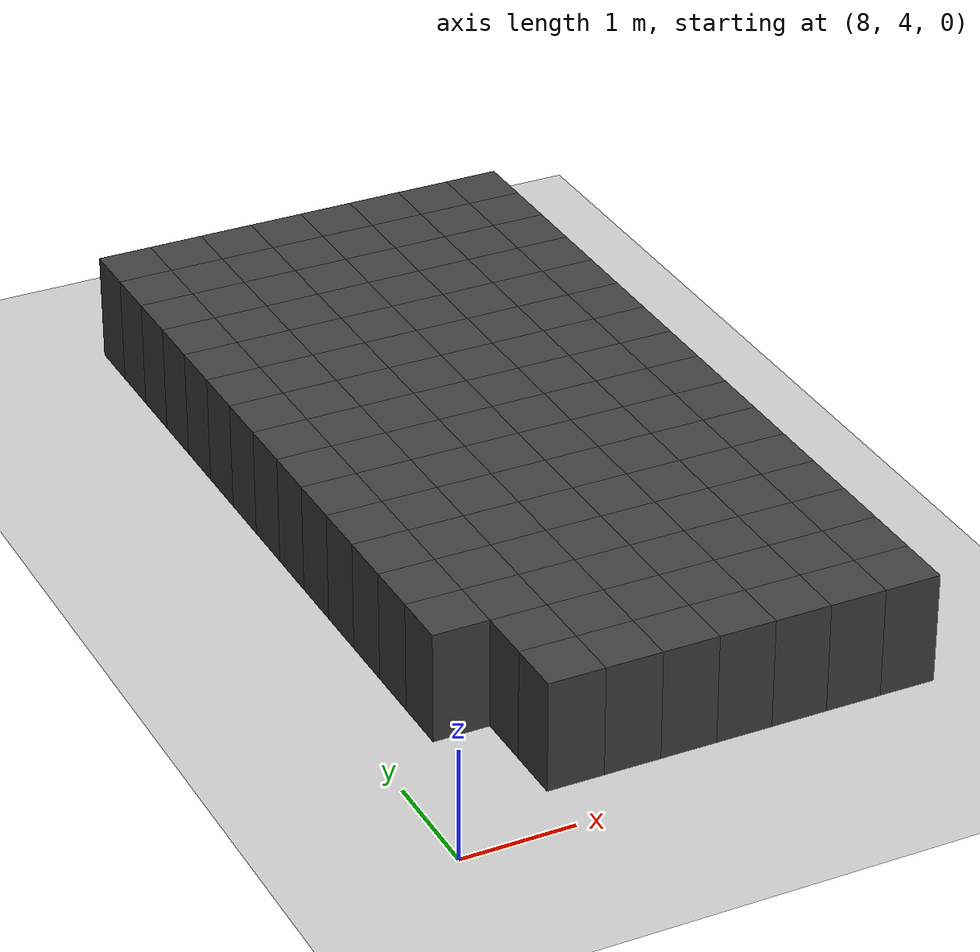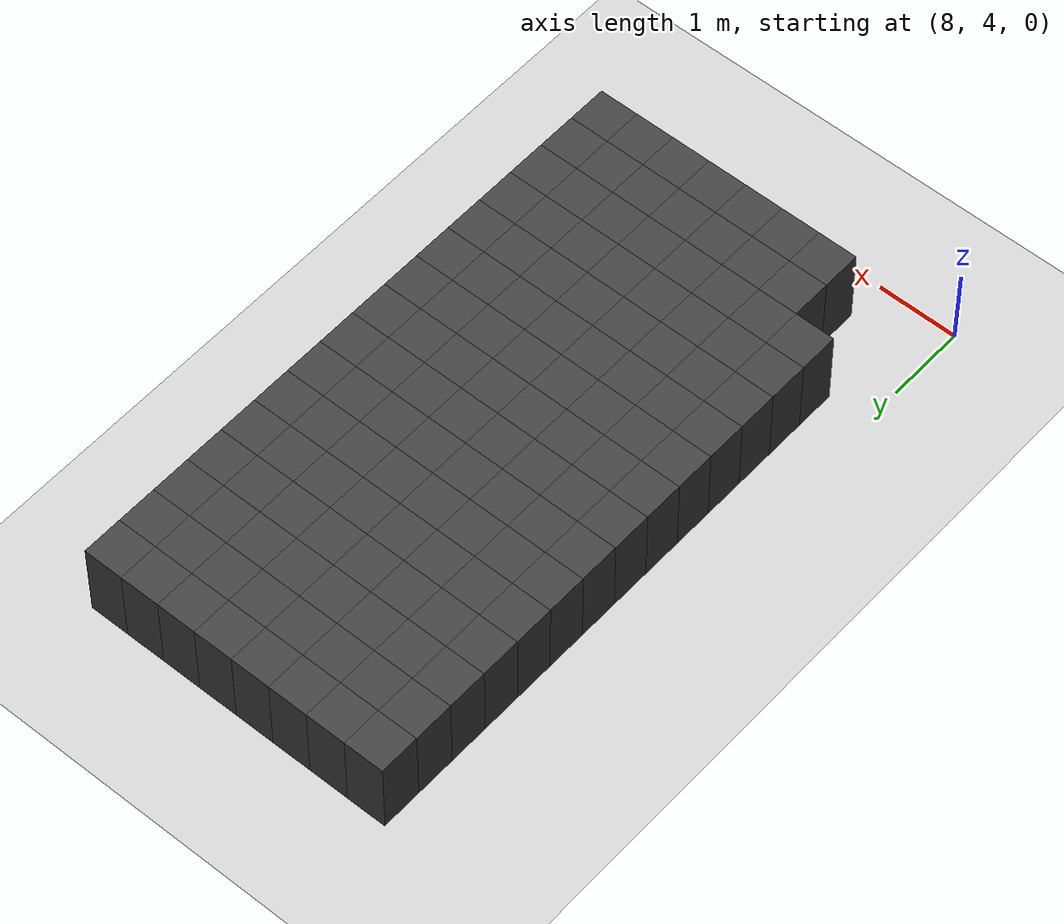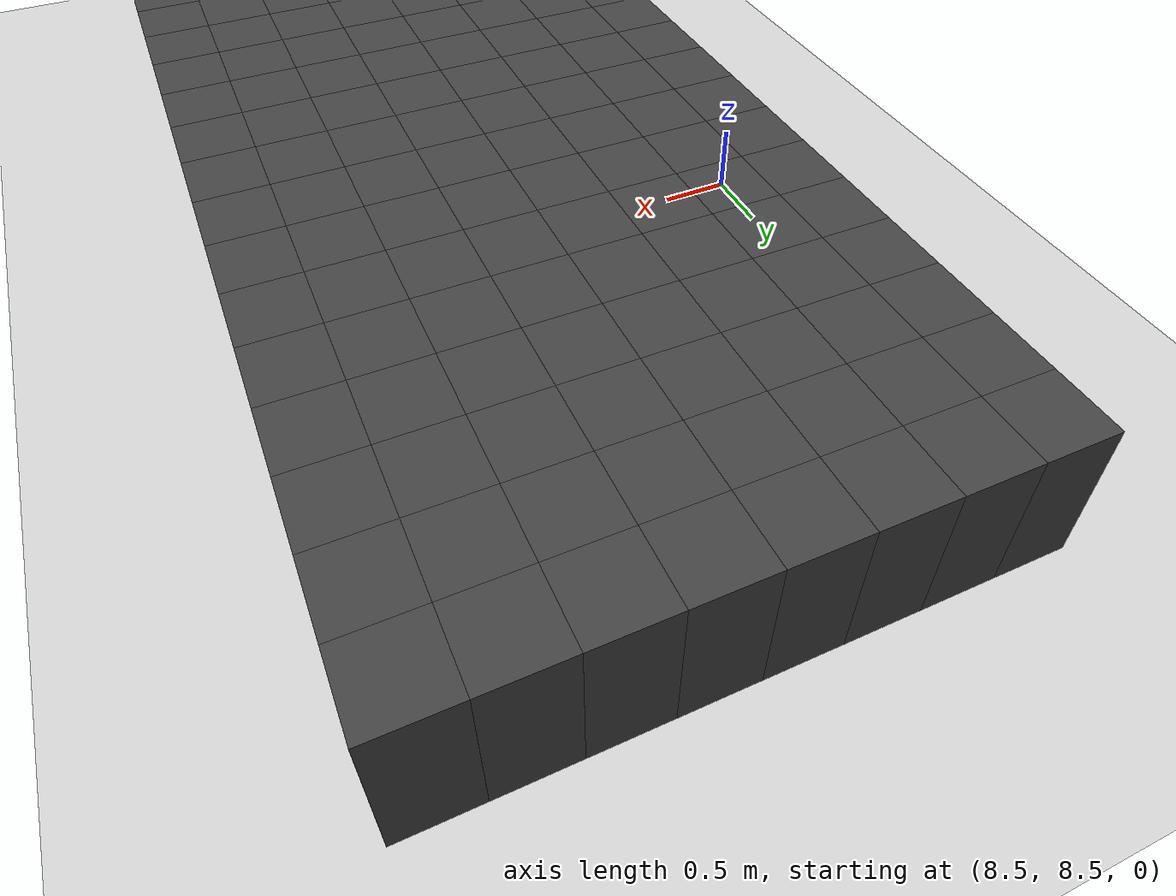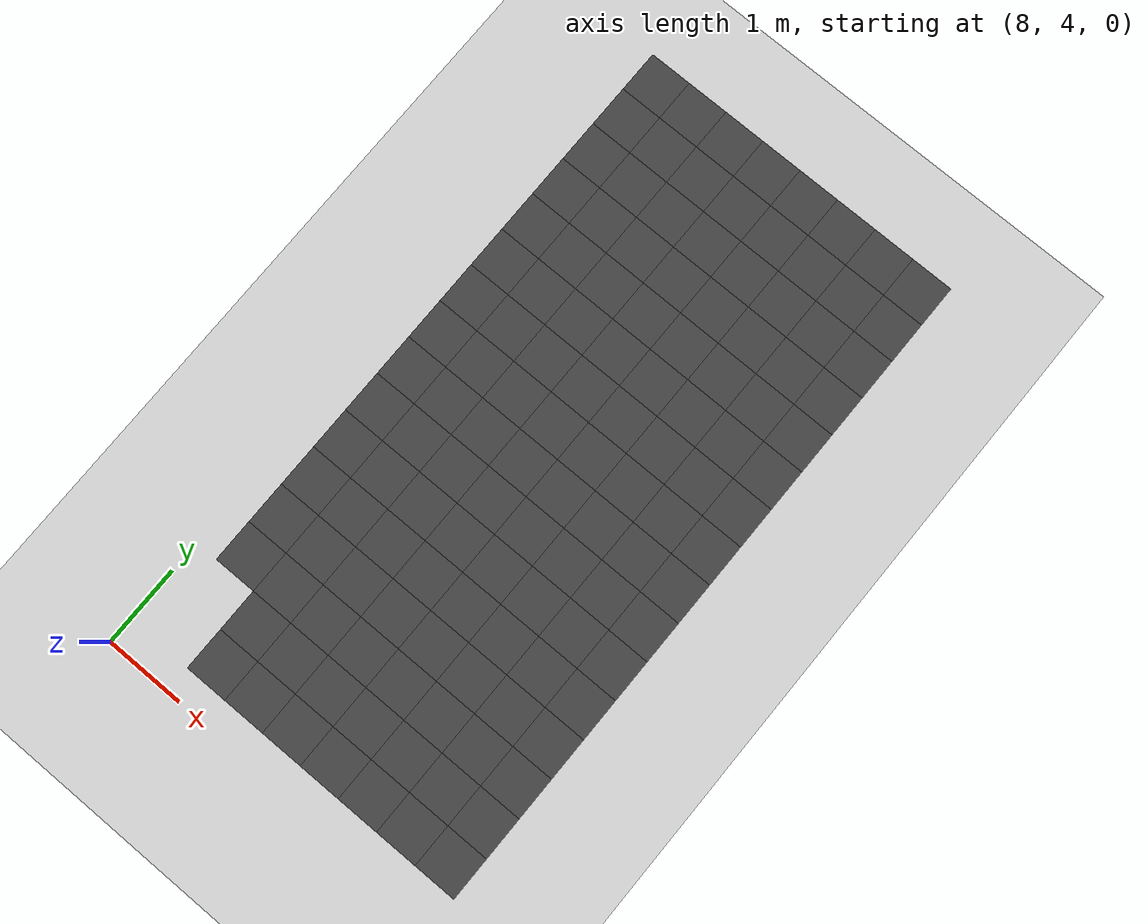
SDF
<sdf version="1.7">
 <world name="map_10764">
  <model name="ground_plane">
   <static>true</static>
   <link name="link">
    <collision name="collision">
     <geometry><plane><normal>0 0 1</normal><size>200 200</size></plane></geometry>
    </collision>
    <visual name="visual">
     <geometry><plane><normal>0 0 1</normal><size>200 200</size></plane></geometry>
     <material><ambient>0.8 0.8 0.8 1</ambient><diffuse>0.8 0.8 0.8 1</diffuse></material>
    </visual>
   </link>
  </model>
  <model name="maze_environment">
   <static>true</static>
   <link name="wall_42">
    <pose>8.750 12.250 0.500 0 0 0</pose>
    <collision name="col"><geometry><box><size>0.5 0.5 1.0</size></box></geometry></collision>
    <visual name="vis">
     <geometry><box><size>0.5 0.5 1.0</size></box></geometry>
     <material><ambient>0.15 0.15 0.15 1</ambient><diffuse>0.25 0.25 0.25 1</diffuse></material>
    </visual>
   </link>
   <link name="wall_43">
    <pose>9.250 12.250 0.500 0 0 0</pose>
    <collision name="col"><geometry><box><size>0.5 0.5 1.0</size></box></geometry></collision>
    <visual name="vis">
     <geometry><box><size>0.5 0.5 1.0</size></box></geometry>
     <material><ambient>0.15 0.15 0.15 1</ambient><diffuse>0.25 0.25 0.25 1</diffuse></material>
    </visual>
   </link>
   <link name="wall_44">
    <pose>9.750 12.250 0.500 0 0 0</pose>
    <collision name="col"><geometry><box><size>0.5 0.5 1.0</size></box></geometry></collision>
    <visual name="vis">
     <geometry><box><size>0.5 0.5 1.0</size></box></geometry>
     <material><ambient>0.15 0.15 0.15 1</ambient><diffuse>0.25 0.25 0.25 1</diffuse></material>
    </visual>
   </link>
   <link name="wall_45">
    <pose>10.250 12.250 0.500 0 0 0</pose>
    <collision name="col"><geometry><box><size>0.5 0.5 1.0</size></box></geometry></collision>
    <visual name="vis">
     <geometry><box><size>0.5 0.5 1.0</size></box></geometry>
     <material><ambient>0.15 0.15 0.15 1</ambient><diffuse>0.25 0.25 0.25 1</diffuse></material>
    </visual>
   </link>
   <link name="wall_46">
    <pose>10.750 12.250 0.500 0 0 0</pose>
    <collision name="col"><geometry><box><size>0.5 0.5 1.0</size></box></geometry></collision>
    <visual name="vis">
     <geometry><box><size>0.5 0.5 1.0</size></box></geometry>
     <material><ambient>0.15 0.15 0.15 1</ambient><diffuse>0.25 0.25 0.25 1</diffuse></material>
    </visual>
   </link>
   <link name="wall_47">
    <pose>11.250 12.250 0.500 0 0 0</pose>
    <collision name="col"><geometry><box><size>0.5 0.5 1.0</size></box></geometry></collision>
    <visual name="vis">
     <geometry><box><size>0.5 0.5 1.0</size></box></geometry>
     <material><ambient>0.15 0.15 0.15 1</ambient><diffuse>0.25 0.25 0.25 1</diffuse></material>
    </visual>
   </link>
   <link name="wall_48">
    <pose>11.750 12.250 0.500 0 0 0</pose>
    <collision name="col"><geometry><box><size>0.5 0.5 1.0</size></box></geometry></collision>
    <visual name="vis">
     <geometry><box><size>0.5 0.5 1.0</size></box></geometry>
     <material><ambient>0.15 0.15 0.15 1</ambient><diffuse>0.25 0.25 0.25 1</diffuse></material>
    </visual>
   </link>
   <link name="wall_49">
    <pose>12.250 12.250 0.500 0 0 0</pose>
    <collision name="col"><geometry><box><size>0.5 0.5 1.0</size></box></geometry></collision>
    <visual name="vis">
     <geometry><box><size>0.5 0.5 1.0</size></box></geometry>
     <material><ambient>0.15 0.15 0.15 1</ambient><diffuse>0.25 0.25 0.25 1</diffuse></material>
    </visual>
   </link>
   <link name="wall_82">
    <pose>8.750 11.750 0.500 0 0 0</pose>
    <collision name="col"><geometry><box><size>0.5 0.5 1.0</size></box></geometry></collision>
    <visual name="vis">
     <geometry><box><size>0.5 0.5 1.0</size></box></geometry>
     <material><ambient>0.15 0.15 0.15 1</ambient><diffuse>0.25 0.25 0.25 1</diffuse></material>
    </visual>
   </link>
   <link name="wall_83">
    <pose>9.250 11.750 0.500 0 0 0</pose>
    <collision name="col"><geometry><box><size>0.5 0.5 1.0</size></box></geometry></collision>
    <visual name="vis">
     <geometry><box><size>0.5 0.5 1.0</size></box></geometry>
     <material><ambient>0.15 0.15 0.15 1</ambient><diffuse>0.25 0.25 0.25 1</diffuse></material>
    </visual>
   </link>
   <link name="wall_84">
    <pose>9.750 11.750 0.500 0 0 0</pose>
    <collision name="col"><geometry><box><size>0.5 0.5 1.0</size></box></geometry></collision>
    <visual name="vis">
     <geometry><box><size>0.5 0.5 1.0</size></box></geometry>
     <material><ambient>0.15 0.15 0.15 1</ambient><diffuse>0.25 0.25 0.25 1</diffuse></material>
    </visual>
   </link>
   <link name="wall_85">
    <pose>10.250 11.750 0.500 0 0 0</pose>
    <collision name="col"><geometry><box><size>0.5 0.5 1.0</size></box></geometry></collision>
    <visual name="vis">
     <geometry><box><size>0.5 0.5 1.0</size></box></geometry>
     <material><ambient>0.15 0.15 0.15 1</ambient><diffuse>0.25 0.25 0.25 1</diffuse></material>
    </visual>
   </link>
   <link name="wall_86">
    <pose>10.750 11.750 0.500 0 0 0</pose>
    <collision name="col"><geometry><box><size>0.5 0.5 1.0</size></box></geometry></collision>
    <visual name="vis">
     <geometry><box><size>0.5 0.5 1.0</size></box></geometry>
     <material><ambient>0.15 0.15 0.15 1</ambient><diffuse>0.25 0.25 0.25 1</diffuse></material>
    </visual>
   </link>
   <link name="wall_87">
    <pose>11.250 11.750 0.500 0 0 0</pose>
    <collision name="col"><geometry><box><size>0.5 0.5 1.0</size></box></geometry></collision>
    <visual name="vis">
     <geometry><box><size>0.5 0.5 1.0</size></box></geometry>
     <material><ambient>0.15 0.15 0.15 1</ambient><diffuse>0.25 0.25 0.25 1</diffuse></material>
    </visual>
   </link>
   <link name="wall_88">
    <pose>11.750 11.750 0.500 0 0 0</pose>
    <collision name="col"><geometry><box><size>0.5 0.5 1.0</size></box></geometry></collision>
    <visual name="vis">
     <geometry><box><size>0.5 0.5 1.0</size></box></geometry>
     <material><ambient>0.15 0.15 0.15 1</ambient><diffuse>0.25 0.25 0.25 1</diffuse></material>
    </visual>
   </link>
   <link name="wall_89">
    <pose>12.250 11.750 0.500 0 0 0</pose>
    <collision name="col"><geometry><box><size>0.5 0.5 1.0</size></box></geometry></collision>
    <visual name="vis">
     <geometry><box><size>0.5 0.5 1.0</size></box></geometry>
     <material><ambient>0.15 0.15 0.15 1</ambient><diffuse>0.25 0.25 0.25 1</diffuse></material>
    </visual>
   </link>
   <link name="wall_122">
    <pose>8.750 11.250 0.500 0 0 0</pose>
    <collision name="col"><geometry><box><size>0.5 0.5 1.0</size></box></geometry></collision>
    <visual name="vis">
     <geometry><box><size>0.5 0.5 1.0</size></box></geometry>
     <material><ambient>0.15 0.15 0.15 1</ambient><diffuse>0.25 0.25 0.25 1</diffuse></material>
    </visual>
   </link>
   <link name="wall_123">
    <pose>9.250 11.250 0.500 0 0 0</pose>
    <collision name="col"><geometry><box><size>0.5 0.5 1.0</size></box></geometry></collision>
    <visual name="vis">
     <geometry><box><size>0.5 0.5 1.0</size></box></geometry>
     <material><ambient>0.15 0.15 0.15 1</ambient><diffuse>0.25 0.25 0.25 1</diffuse></material>
    </visual>
   </link>
   <link name="wall_124">
    <pose>9.750 11.250 0.500 0 0 0</pose>
    <collision name="col"><geometry><box><size>0.5 0.5 1.0</size></box></geometry></collision>
    <visual name="vis">
     <geometry><box><size>0.5 0.5 1.0</size></box></geometry>
     <material><ambient>0.15 0.15 0.15 1</ambient><diffuse>0.25 0.25 0.25 1</diffuse></material>
    </visual>
   </link>
   <link name="wall_125">
    <pose>10.250 11.250 0.500 0 0 0</pose>
    <collision name="col"><geometry><box><size>0.5 0.5 1.0</size></box></geometry></collision>
    <visual name="vis">
     <geometry><box><size>0.5 0.5 1.0</size></box></geometry>
     <material><ambient>0.15 0.15 0.15 1</ambient><diffuse>0.25 0.25 0.25 1</diffuse></material>
    </visual>
   </link>
   <link name="wall_126">
    <pose>10.750 11.250 0.500 0 0 0</pose>
    <collision name="col"><geometry><box><size>0.5 0.5 1.0</size></box></geometry></collision>
    <visual name="vis">
     <geometry><box><size>0.5 0.5 1.0</size></box></geometry>
     <material><ambient>0.15 0.15 0.15 1</ambient><diffuse>0.25 0.25 0.25 1</diffuse></material>
    </visual>
   </link>
   <link name="wall_127">
    <pose>11.250 11.250 0.500 0 0 0</pose>
    <collision name="col"><geometry><box><size>0.5 0.5 1.0</size></box></geometry></collision>
    <visual name="vis">
     <geometry><box><size>0.5 0.5 1.0</size></box></geometry>
     <material><ambient>0.15 0.15 0.15 1</ambient><diffuse>0.25 0.25 0.25 1</diffuse></material>
    </visual>
   </link>
   <link name="wall_128">
    <pose>11.750 11.250 0.500 0 0 0</pose>
    <collision name="col"><geometry><box><size>0.5 0.5 1.0</size></box></geometry></collision>
    <visual name="vis">
     <geometry><box><size>0.5 0.5 1.0</size></box></geometry>
     <material><ambient>0.15 0.15 0.15 1</ambient><diffuse>0.25 0.25 0.25 1</diffuse></material>
    </visual>
   </link>
   <link name="wall_129">
    <pose>12.250 11.250 0.500 0 0 0</pose>
    <collision name="col"><geometry><box><size>0.5 0.5 1.0</size></box></geometry></collision>
    <visual name="vis">
     <geometry><box><size>0.5 0.5 1.0</size></box></geometry>
     <material><ambient>0.15 0.15 0.15 1</ambient><diffuse>0.25 0.25 0.25 1</diffuse></material>
    </visual>
   </link>
   <link name="wall_158">
    <pose>8.750 10.750 0.500 0 0 0</pose>
    <collision name="col"><geometry><box><size>0.5 0.5 1.0</size></box></geometry></collision>
    <visual name="vis">
     <geometry><box><size>0.5 0.5 1.0</size></box></geometry>
     <material><ambient>0.15 0.15 0.15 1</ambient><diffuse>0.25 0.25 0.25 1</diffuse></material>
    </visual>
   </link>
   <link name="wall_159">
    <pose>9.250 10.750 0.500 0 0 0</pose>
    <collision name="col"><geometry><box><size>0.5 0.5 1.0</size></box></geometry></collision>
    <visual name="vis">
     <geometry><box><size>0.5 0.5 1.0</size></box></geometry>
     <material><ambient>0.15 0.15 0.15 1</ambient><diffuse>0.25 0.25 0.25 1</diffuse></material>
    </visual>
   </link>
   <link name="wall_160">
    <pose>9.750 10.750 0.500 0 0 0</pose>
    <collision name="col"><geometry><box><size>0.5 0.5 1.0</size></box></geometry></collision>
    <visual name="vis">
     <geometry><box><size>0.5 0.5 1.0</size></box></geometry>
     <material><ambient>0.15 0.15 0.15 1</ambient><diffuse>0.25 0.25 0.25 1</diffuse></material>
    </visual>
   </link>
   <link name="wall_161">
    <pose>10.250 10.750 0.500 0 0 0</pose>
    <collision name="col"><geometry><box><size>0.5 0.5 1.0</size></box></geometry></collision>
    <visual name="vis">
     <geometry><box><size>0.5 0.5 1.0</size></box></geometry>
     <material><ambient>0.15 0.15 0.15 1</ambient><diffuse>0.25 0.25 0.25 1</diffuse></material>
    </visual>
   </link>
   <link name="wall_162">
    <pose>10.750 10.750 0.500 0 0 0</pose>
    <collision name="col"><geometry><box><size>0.5 0.5 1.0</size></box></geometry></collision>
    <visual name="vis">
     <geometry><box><size>0.5 0.5 1.0</size></box></geometry>
     <material><ambient>0.15 0.15 0.15 1</ambient><diffuse>0.25 0.25 0.25 1</diffuse></material>
    </visual>
   </link>
   <link name="wall_163">
    <pose>11.250 10.750 0.500 0 0 0</pose>
    <collision name="col"><geometry><box><size>0.5 0.5 1.0</size></box></geometry></collision>
    <visual name="vis">
     <geometry><box><size>0.5 0.5 1.0</size></box></geometry>
     <material><ambient>0.15 0.15 0.15 1</ambient><diffuse>0.25 0.25 0.25 1</diffuse></material>
    </visual>
   </link>
   <link name="wall_164">
    <pose>11.750 10.750 0.500 0 0 0</pose>
    <collision name="col"><geometry><box><size>0.5 0.5 1.0</size></box></geometry></collision>
    <visual name="vis">
     <geometry><box><size>0.5 0.5 1.0</size></box></geometry>
     <material><ambient>0.15 0.15 0.15 1</ambient><diffuse>0.25 0.25 0.25 1</diffuse></material>
    </visual>
   </link>
   <link name="wall_165">
    <pose>12.250 10.750 0.500 0 0 0</pose>
    <collision name="col"><geometry><box><size>0.5 0.5 1.0</size></box></geometry></collision>
    <visual name="vis">
     <geometry><box><size>0.5 0.5 1.0</size></box></geometry>
     <material><ambient>0.15 0.15 0.15 1</ambient><diffuse>0.25 0.25 0.25 1</diffuse></material>
    </visual>
   </link>
   <link name="wall_199">
    <pose>8.750 10.250 0.500 0 0 0</pose>
    <collision name="col"><geometry><box><size>0.5 0.5 1.0</size></box></geometry></collision>
    <visual name="vis">
     <geometry><box><size>0.5 0.5 1.0</size></box></geometry>
     <material><ambient>0.15 0.15 0.15 1</ambient><diffuse>0.25 0.25 0.25 1</diffuse></material>
    </visual>
   </link>
   <link name="wall_200">
    <pose>9.250 10.250 0.500 0 0 0</pose>
    <collision name="col"><geometry><box><size>0.5 0.5 1.0</size></box></geometry></collision>
    <visual name="vis">
     <geometry><box><size>0.5 0.5 1.0</size></box></geometry>
     <material><ambient>0.15 0.15 0.15 1</ambient><diffuse>0.25 0.25 0.25 1</diffuse></material>
    </visual>
   </link>
   <link name="wall_201">
    <pose>9.750 10.250 0.500 0 0 0</pose>
    <collision name="col"><geometry><box><size>0.5 0.5 1.0</size></box></geometry></collision>
    <visual name="vis">
     <geometry><box><size>0.5 0.5 1.0</size></box></geometry>
     <material><ambient>0.15 0.15 0.15 1</ambient><diffuse>0.25 0.25 0.25 1</diffuse></material>
    </visual>
   </link>
   <link name="wall_202">
    <pose>10.250 10.250 0.500 0 0 0</pose>
    <collision name="col"><geometry><box><size>0.5 0.5 1.0</size></box></geometry></collision>
    <visual name="vis">
     <geometry><box><size>0.5 0.5 1.0</size></box></geometry>
     <material><ambient>0.15 0.15 0.15 1</ambient><diffuse>0.25 0.25 0.25 1</diffuse></material>
    </visual>
   </link>
   <link name="wall_203">
    <pose>10.750 10.250 0.500 0 0 0</pose>
    <collision name="col"><geometry><box><size>0.5 0.5 1.0</size></box></geometry></collision>
    <visual name="vis">
     <geometry><box><size>0.5 0.5 1.0</size></box></geometry>
     <material><ambient>0.15 0.15 0.15 1</ambient><diffuse>0.25 0.25 0.25 1</diffuse></material>
    </visual>
   </link>
   <link name="wall_204">
    <pose>11.250 10.250 0.500 0 0 0</pose>
    <collision name="col"><geometry><box><size>0.5 0.5 1.0</size></box></geometry></collision>
    <visual name="vis">
     <geometry><box><size>0.5 0.5 1.0</size></box></geometry>
     <material><ambient>0.15 0.15 0.15 1</ambient><diffuse>0.25 0.25 0.25 1</diffuse></material>
    </visual>
   </link>
   <link name="wall_205">
    <pose>11.750 10.250 0.500 0 0 0</pose>
    <collision name="col"><geometry><box><size>0.5 0.5 1.0</size></box></geometry></collision>
    <visual name="vis">
     <geometry><box><size>0.5 0.5 1.0</size></box></geometry>
     <material><ambient>0.15 0.15 0.15 1</ambient><diffuse>0.25 0.25 0.25 1</diffuse></material>
    </visual>
   </link>
   <link name="wall_206">
    <pose>12.250 10.250 0.500 0 0 0</pose>
    <collision name="col"><geometry><box><size>0.5 0.5 1.0</size></box></geometry></collision>
    <visual name="vis">
     <geometry><box><size>0.5 0.5 1.0</size></box></geometry>
     <material><ambient>0.15 0.15 0.15 1</ambient><diffuse>0.25 0.25 0.25 1</diffuse></material>
    </visual>
   </link>
   <link name="wall_247">
    <pose>8.750 9.750 0.500 0 0 0</pose>
    <collision name="col"><geometry><box><size>0.5 0.5 1.0</size></box></geometry></collision>
    <visual name="vis">
     <geometry><box><size>0.5 0.5 1.0</size></box></geometry>
     <material><ambient>0.15 0.15 0.15 1</ambient><diffuse>0.25 0.25 0.25 1</diffuse></material>
    </visual>
   </link>
   <link name="wall_248">
    <pose>9.250 9.750 0.500 0 0 0</pose>
    <collision name="col"><geometry><box><size>0.5 0.5 1.0</size></box></geometry></collision>
    <visual name="vis">
     <geometry><box><size>0.5 0.5 1.0</size></box></geometry>
     <material><ambient>0.15 0.15 0.15 1</ambient><diffuse>0.25 0.25 0.25 1</diffuse></material>
    </visual>
   </link>
   <link name="wall_249">
    <pose>9.750 9.750 0.500 0 0 0</pose>
    <collision name="col"><geometry><box><size>0.5 0.5 1.0</size></box></geometry></collision>
    <visual name="vis">
     <geometry><box><size>0.5 0.5 1.0</size></box></geometry>
     <material><ambient>0.15 0.15 0.15 1</ambient><diffuse>0.25 0.25 0.25 1</diffuse></material>
    </visual>
   </link>
   <link name="wall_250">
    <pose>10.250 9.750 0.500 0 0 0</pose>
    <collision name="col"><geometry><box><size>0.5 0.5 1.0</size></box></geometry></collision>
    <visual name="vis">
     <geometry><box><size>0.5 0.5 1.0</size></box></geometry>
     <material><ambient>0.15 0.15 0.15 1</ambient><diffuse>0.25 0.25 0.25 1</diffuse></material>
    </visual>
   </link>
   <link name="wall_251">
    <pose>10.750 9.750 0.500 0 0 0</pose>
    <collision name="col"><geometry><box><size>0.5 0.5 1.0</size></box></geometry></collision>
    <visual name="vis">
     <geometry><box><size>0.5 0.5 1.0</size></box></geometry>
     <material><ambient>0.15 0.15 0.15 1</ambient><diffuse>0.25 0.25 0.25 1</diffuse></material>
    </visual>
   </link>
   <link name="wall_252">
    <pose>11.250 9.750 0.500 0 0 0</pose>
    <collision name="col"><geometry><box><size>0.5 0.5 1.0</size></box></geometry></collision>
    <visual name="vis">
     <geometry><box><size>0.5 0.5 1.0</size></box></geometry>
     <material><ambient>0.15 0.15 0.15 1</ambient><diffuse>0.25 0.25 0.25 1</diffuse></material>
    </visual>
   </link>
   <link name="wall_253">
    <pose>11.750 9.750 0.500 0 0 0</pose>
    <collision name="col"><geometry><box><size>0.5 0.5 1.0</size></box></geometry></collision>
    <visual name="vis">
     <geometry><box><size>0.5 0.5 1.0</size></box></geometry>
     <material><ambient>0.15 0.15 0.15 1</ambient><diffuse>0.25 0.25 0.25 1</diffuse></material>
    </visual>
   </link>
   <link name="wall_254">
    <pose>12.250 9.750 0.500 0 0 0</pose>
    <collision name="col"><geometry><box><size>0.5 0.5 1.0</size></box></geometry></collision>
    <visual name="vis">
     <geometry><box><size>0.5 0.5 1.0</size></box></geometry>
     <material><ambient>0.15 0.15 0.15 1</ambient><diffuse>0.25 0.25 0.25 1</diffuse></material>
    </visual>
   </link>
   <link name="wall_295">
    <pose>8.750 9.250 0.500 0 0 0</pose>
    <collision name="col"><geometry><box><size>0.5 0.5 1.0</size></box></geometry></collision>
    <visual name="vis">
     <geometry><box><size>0.5 0.5 1.0</size></box></geometry>
     <material><ambient>0.15 0.15 0.15 1</ambient><diffuse>0.25 0.25 0.25 1</diffuse></material>
    </visual>
   </link>
   <link name="wall_296">
    <pose>9.250 9.250 0.500 0 0 0</pose>
    <collision name="col"><geometry><box><size>0.5 0.5 1.0</size></box></geometry></collision>
    <visual name="vis">
     <geometry><box><size>0.5 0.5 1.0</size></box></geometry>
     <material><ambient>0.15 0.15 0.15 1</ambient><diffuse>0.25 0.25 0.25 1</diffuse></material>
    </visual>
   </link>
   <link name="wall_297">
    <pose>9.750 9.250 0.500 0 0 0</pose>
    <collision name="col"><geometry><box><size>0.5 0.5 1.0</size></box></geometry></collision>
    <visual name="vis">
     <geometry><box><size>0.5 0.5 1.0</size></box></geometry>
     <material><ambient>0.15 0.15 0.15 1</ambient><diffuse>0.25 0.25 0.25 1</diffuse></material>
    </visual>
   </link>
   <link name="wall_298">
    <pose>10.250 9.250 0.500 0 0 0</pose>
    <collision name="col"><geometry><box><size>0.5 0.5 1.0</size></box></geometry></collision>
    <visual name="vis">
     <geometry><box><size>0.5 0.5 1.0</size></box></geometry>
     <material><ambient>0.15 0.15 0.15 1</ambient><diffuse>0.25 0.25 0.25 1</diffuse></material>
    </visual>
   </link>
   <link name="wall_299">
    <pose>10.750 9.250 0.500 0 0 0</pose>
    <collision name="col"><geometry><box><size>0.5 0.5 1.0</size></box></geometry></collision>
    <visual name="vis">
     <geometry><box><size>0.5 0.5 1.0</size></box></geometry>
     <material><ambient>0.15 0.15 0.15 1</ambient><diffuse>0.25 0.25 0.25 1</diffuse></material>
    </visual>
   </link>
   <link name="wall_300">
    <pose>11.250 9.250 0.500 0 0 0</pose>
    <collision name="col"><geometry><box><size>0.5 0.5 1.0</size></box></geometry></collision>
    <visual name="vis">
     <geometry><box><size>0.5 0.5 1.0</size></box></geometry>
     <material><ambient>0.15 0.15 0.15 1</ambient><diffuse>0.25 0.25 0.25 1</diffuse></material>
    </visual>
   </link>
   <link name="wall_301">
    <pose>11.750 9.250 0.500 0 0 0</pose>
    <collision name="col"><geometry><box><size>0.5 0.5 1.0</size></box></geometry></collision>
    <visual name="vis">
     <geometry><box><size>0.5 0.5 1.0</size></box></geometry>
     <material><ambient>0.15 0.15 0.15 1</ambient><diffuse>0.25 0.25 0.25 1</diffuse></material>
    </visual>
   </link>
   <link name="wall_302">
    <pose>12.250 9.250 0.500 0 0 0</pose>
    <collision name="col"><geometry><box><size>0.5 0.5 1.0</size></box></geometry></collision>
    <visual name="vis">
     <geometry><box><size>0.5 0.5 1.0</size></box></geometry>
     <material><ambient>0.15 0.15 0.15 1</ambient><diffuse>0.25 0.25 0.25 1</diffuse></material>
    </visual>
   </link>
   <link name="wall_343">
    <pose>8.750 8.750 0.500 0 0 0</pose>
    <collision name="col"><geometry><box><size>0.5 0.5 1.0</size></box></geometry></collision>
    <visual name="vis">
     <geometry><box><size>0.5 0.5 1.0</size></box></geometry>
     <material><ambient>0.15 0.15 0.15 1</ambient><diffuse>0.25 0.25 0.25 1</diffuse></material>
    </visual>
   </link>
   <link name="wall_344">
    <pose>9.250 8.750 0.500 0 0 0</pose>
    <collision name="col"><geometry><box><size>0.5 0.5 1.0</size></box></geometry></collision>
    <visual name="vis">
     <geometry><box><size>0.5 0.5 1.0</size></box></geometry>
     <material><ambient>0.15 0.15 0.15 1</ambient><diffuse>0.25 0.25 0.25 1</diffuse></material>
    </visual>
   </link>
   <link name="wall_345">
    <pose>9.750 8.750 0.500 0 0 0</pose>
    <collision name="col"><geometry><box><size>0.5 0.5 1.0</size></box></geometry></collision>
    <visual name="vis">
     <geometry><box><size>0.5 0.5 1.0</size></box></geometry>
     <material><ambient>0.15 0.15 0.15 1</ambient><diffuse>0.25 0.25 0.25 1</diffuse></material>
    </visual>
   </link>
   <link name="wall_346">
    <pose>10.250 8.750 0.500 0 0 0</pose>
    <collision name="col"><geometry><box><size>0.5 0.5 1.0</size></box></geometry></collision>
    <visual name="vis">
     <geometry><box><size>0.5 0.5 1.0</size></box></geometry>
     <material><ambient>0.15 0.15 0.15 1</ambient><diffuse>0.25 0.25 0.25 1</diffuse></material>
    </visual>
   </link>
   <link name="wall_347">
    <pose>10.750 8.750 0.500 0 0 0</pose>
    <collision name="col"><geometry><box><size>0.5 0.5 1.0</size></box></geometry></collision>
    <visual name="vis">
     <geometry><box><size>0.5 0.5 1.0</size></box></geometry>
     <material><ambient>0.15 0.15 0.15 1</ambient><diffuse>0.25 0.25 0.25 1</diffuse></material>
    </visual>
   </link>
   <link name="wall_348">
    <pose>11.250 8.750 0.500 0 0 0</pose>
    <collision name="col"><geometry><box><size>0.5 0.5 1.0</size></box></geometry></collision>
    <visual name="vis">
     <geometry><box><size>0.5 0.5 1.0</size></box></geometry>
     <material><ambient>0.15 0.15 0.15 1</ambient><diffuse>0.25 0.25 0.25 1</diffuse></material>
    </visual>
   </link>
   <link name="wall_349">
    <pose>11.750 8.750 0.500 0 0 0</pose>
    <collision name="col"><geometry><box><size>0.5 0.5 1.0</size></box></geometry></collision>
    <visual name="vis">
     <geometry><box><size>0.5 0.5 1.0</size></box></geometry>
     <material><ambient>0.15 0.15 0.15 1</ambient><diffuse>0.25 0.25 0.25 1</diffuse></material>
    </visual>
   </link>
   <link name="wall_350">
    <pose>12.250 8.750 0.500 0 0 0</pose>
    <collision name="col"><geometry><box><size>0.5 0.5 1.0</size></box></geometry></collision>
    <visual name="vis">
     <geometry><box><size>0.5 0.5 1.0</size></box></geometry>
     <material><ambient>0.15 0.15 0.15 1</ambient><diffuse>0.25 0.25 0.25 1</diffuse></material>
    </visual>
   </link>
   <link name="wall_391">
    <pose>8.750 8.250 0.500 0 0 0</pose>
    <collision name="col"><geometry><box><size>0.5 0.5 1.0</size></box></geometry></collision>
    <visual name="vis">
     <geometry><box><size>0.5 0.5 1.0</size></box></geometry>
     <material><ambient>0.15 0.15 0.15 1</ambient><diffuse>0.25 0.25 0.25 1</diffuse></material>
    </visual>
   </link>
   <link name="wall_392">
    <pose>9.250 8.250 0.500 0 0 0</pose>
    <collision name="col"><geometry><box><size>0.5 0.5 1.0</size></box></geometry></collision>
    <visual name="vis">
     <geometry><box><size>0.5 0.5 1.0</size></box></geometry>
     <material><ambient>0.15 0.15 0.15 1</ambient><diffuse>0.25 0.25 0.25 1</diffuse></material>
    </visual>
   </link>
   <link name="wall_393">
    <pose>9.750 8.250 0.500 0 0 0</pose>
    <collision name="col"><geometry><box><size>0.5 0.5 1.0</size></box></geometry></collision>
    <visual name="vis">
     <geometry><box><size>0.5 0.5 1.0</size></box></geometry>
     <material><ambient>0.15 0.15 0.15 1</ambient><diffuse>0.25 0.25 0.25 1</diffuse></material>
    </visual>
   </link>
   <link name="wall_394">
    <pose>10.250 8.250 0.500 0 0 0</pose>
    <collision name="col"><geometry><box><size>0.5 0.5 1.0</size></box></geometry></collision>
    <visual name="vis">
     <geometry><box><size>0.5 0.5 1.0</size></box></geometry>
     <material><ambient>0.15 0.15 0.15 1</ambient><diffuse>0.25 0.25 0.25 1</diffuse></material>
    </visual>
   </link>
   <link name="wall_395">
    <pose>10.750 8.250 0.500 0 0 0</pose>
    <collision name="col"><geometry><box><size>0.5 0.5 1.0</size></box></geometry></collision>
    <visual name="vis">
     <geometry><box><size>0.5 0.5 1.0</size></box></geometry>
     <material><ambient>0.15 0.15 0.15 1</ambient><diffuse>0.25 0.25 0.25 1</diffuse></material>
    </visual>
   </link>
   <link name="wall_396">
    <pose>11.250 8.250 0.500 0 0 0</pose>
    <collision name="col"><geometry><box><size>0.5 0.5 1.0</size></box></geometry></collision>
    <visual name="vis">
     <geometry><box><size>0.5 0.5 1.0</size></box></geometry>
     <material><ambient>0.15 0.15 0.15 1</ambient><diffuse>0.25 0.25 0.25 1</diffuse></material>
    </visual>
   </link>
   <link name="wall_397">
    <pose>11.750 8.250 0.500 0 0 0</pose>
    <collision name="col"><geometry><box><size>0.5 0.5 1.0</size></box></geometry></collision>
    <visual name="vis">
     <geometry><box><size>0.5 0.5 1.0</size></box></geometry>
     <material><ambient>0.15 0.15 0.15 1</ambient><diffuse>0.25 0.25 0.25 1</diffuse></material>
    </visual>
   </link>
   <link name="wall_398">
    <pose>12.250 8.250 0.500 0 0 0</pose>
    <collision name="col"><geometry><box><size>0.5 0.5 1.0</size></box></geometry></collision>
    <visual name="vis">
     <geometry><box><size>0.5 0.5 1.0</size></box></geometry>
     <material><ambient>0.15 0.15 0.15 1</ambient><diffuse>0.25 0.25 0.25 1</diffuse></material>
    </visual>
   </link>
   <link name="wall_439">
    <pose>8.750 7.750 0.500 0 0 0</pose>
    <collision name="col"><geometry><box><size>0.5 0.5 1.0</size></box></geometry></collision>
    <visual name="vis">
     <geometry><box><size>0.5 0.5 1.0</size></box></geometry>
     <material><ambient>0.15 0.15 0.15 1</ambient><diffuse>0.25 0.25 0.25 1</diffuse></material>
    </visual>
   </link>
   <link name="wall_440">
    <pose>9.250 7.750 0.500 0 0 0</pose>
    <collision name="col"><geometry><box><size>0.5 0.5 1.0</size></box></geometry></collision>
    <visual name="vis">
     <geometry><box><size>0.5 0.5 1.0</size></box></geometry>
     <material><ambient>0.15 0.15 0.15 1</ambient><diffuse>0.25 0.25 0.25 1</diffuse></material>
    </visual>
   </link>
   <link name="wall_441">
    <pose>9.750 7.750 0.500 0 0 0</pose>
    <collision name="col"><geometry><box><size>0.5 0.5 1.0</size></box></geometry></collision>
    <visual name="vis">
     <geometry><box><size>0.5 0.5 1.0</size></box></geometry>
     <material><ambient>0.15 0.15 0.15 1</ambient><diffuse>0.25 0.25 0.25 1</diffuse></material>
    </visual>
   </link>
   <link name="wall_442">
    <pose>10.250 7.750 0.500 0 0 0</pose>
    <collision name="col"><geometry><box><size>0.5 0.5 1.0</size></box></geometry></collision>
    <visual name="vis">
     <geometry><box><size>0.5 0.5 1.0</size></box></geometry>
     <material><ambient>0.15 0.15 0.15 1</ambient><diffuse>0.25 0.25 0.25 1</diffuse></material>
    </visual>
   </link>
   <link name="wall_443">
    <pose>10.750 7.750 0.500 0 0 0</pose>
    <collision name="col"><geometry><box><size>0.5 0.5 1.0</size></box></geometry></collision>
    <visual name="vis">
     <geometry><box><size>0.5 0.5 1.0</size></box></geometry>
     <material><ambient>0.15 0.15 0.15 1</ambient><diffuse>0.25 0.25 0.25 1</diffuse></material>
    </visual>
   </link>
   <link name="wall_444">
    <pose>11.250 7.750 0.500 0 0 0</pose>
    <collision name="col"><geometry><box><size>0.5 0.5 1.0</size></box></geometry></collision>
    <visual name="vis">
     <geometry><box><size>0.5 0.5 1.0</size></box></geometry>
     <material><ambient>0.15 0.15 0.15 1</ambient><diffuse>0.25 0.25 0.25 1</diffuse></material>
    </visual>
   </link>
   <link name="wall_445">
    <pose>11.750 7.750 0.500 0 0 0</pose>
    <collision name="col"><geometry><box><size>0.5 0.5 1.0</size></box></geometry></collision>
    <visual name="vis">
     <geometry><box><size>0.5 0.5 1.0</size></box></geometry>
     <material><ambient>0.15 0.15 0.15 1</ambient><diffuse>0.25 0.25 0.25 1</diffuse></material>
    </visual>
   </link>
   <link name="wall_446">
    <pose>12.250 7.750 0.500 0 0 0</pose>
    <collision name="col"><geometry><box><size>0.5 0.5 1.0</size></box></geometry></collision>
    <visual name="vis">
     <geometry><box><size>0.5 0.5 1.0</size></box></geometry>
     <material><ambient>0.15 0.15 0.15 1</ambient><diffuse>0.25 0.25 0.25 1</diffuse></material>
    </visual>
   </link>
   <link name="wall_487">
    <pose>8.750 7.250 0.500 0 0 0</pose>
    <collision name="col"><geometry><box><size>0.5 0.5 1.0</size></box></geometry></collision>
    <visual name="vis">
     <geometry><box><size>0.5 0.5 1.0</size></box></geometry>
     <material><ambient>0.15 0.15 0.15 1</ambient><diffuse>0.25 0.25 0.25 1</diffuse></material>
    </visual>
   </link>
   <link name="wall_488">
    <pose>9.250 7.250 0.500 0 0 0</pose>
    <collision name="col"><geometry><box><size>0.5 0.5 1.0</size></box></geometry></collision>
    <visual name="vis">
     <geometry><box><size>0.5 0.5 1.0</size></box></geometry>
     <material><ambient>0.15 0.15 0.15 1</ambient><diffuse>0.25 0.25 0.25 1</diffuse></material>
    </visual>
   </link>
   <link name="wall_489">
    <pose>9.750 7.250 0.500 0 0 0</pose>
    <collision name="col"><geometry><box><size>0.5 0.5 1.0</size></box></geometry></collision>
    <visual name="vis">
     <geometry><box><size>0.5 0.5 1.0</size></box></geometry>
     <material><ambient>0.15 0.15 0.15 1</ambient><diffuse>0.25 0.25 0.25 1</diffuse></material>
    </visual>
   </link>
   <link name="wall_490">
    <pose>10.250 7.250 0.500 0 0 0</pose>
    <collision name="col"><geometry><box><size>0.5 0.5 1.0</size></box></geometry></collision>
    <visual name="vis">
     <geometry><box><size>0.5 0.5 1.0</size></box></geometry>
     <material><ambient>0.15 0.15 0.15 1</ambient><diffuse>0.25 0.25 0.25 1</diffuse></material>
    </visual>
   </link>
   <link name="wall_491">
    <pose>10.750 7.250 0.500 0 0 0</pose>
    <collision name="col"><geometry><box><size>0.5 0.5 1.0</size></box></geometry></collision>
    <visual name="vis">
     <geometry><box><size>0.5 0.5 1.0</size></box></geometry>
     <material><ambient>0.15 0.15 0.15 1</ambient><diffuse>0.25 0.25 0.25 1</diffuse></material>
    </visual>
   </link>
   <link name="wall_492">
    <pose>11.250 7.250 0.500 0 0 0</pose>
    <collision name="col"><geometry><box><size>0.5 0.5 1.0</size></box></geometry></collision>
    <visual name="vis">
     <geometry><box><size>0.5 0.5 1.0</size></box></geometry>
     <material><ambient>0.15 0.15 0.15 1</ambient><diffuse>0.25 0.25 0.25 1</diffuse></material>
    </visual>
   </link>
   <link name="wall_493">
    <pose>11.750 7.250 0.500 0 0 0</pose>
    <collision name="col"><geometry><box><size>0.5 0.5 1.0</size></box></geometry></collision>
    <visual name="vis">
     <geometry><box><size>0.5 0.5 1.0</size></box></geometry>
     <material><ambient>0.15 0.15 0.15 1</ambient><diffuse>0.25 0.25 0.25 1</diffuse></material>
    </visual>
   </link>
   <link name="wall_494">
    <pose>12.250 7.250 0.500 0 0 0</pose>
    <collision name="col"><geometry><box><size>0.5 0.5 1.0</size></box></geometry></collision>
    <visual name="vis">
     <geometry><box><size>0.5 0.5 1.0</size></box></geometry>
     <material><ambient>0.15 0.15 0.15 1</ambient><diffuse>0.25 0.25 0.25 1</diffuse></material>
    </visual>
   </link>
   <link name="wall_535">
    <pose>8.750 6.750 0.500 0 0 0</pose>
    <collision name="col"><geometry><box><size>0.5 0.5 1.0</size></box></geometry></collision>
    <visual name="vis">
     <geometry><box><size>0.5 0.5 1.0</size></box></geometry>
     <material><ambient>0.15 0.15 0.15 1</ambient><diffuse>0.25 0.25 0.25 1</diffuse></material>
    </visual>
   </link>
   <link name="wall_536">
    <pose>9.250 6.750 0.500 0 0 0</pose>
    <collision name="col"><geometry><box><size>0.5 0.5 1.0</size></box></geometry></collision>
    <visual name="vis">
     <geometry><box><size>0.5 0.5 1.0</size></box></geometry>
     <material><ambient>0.15 0.15 0.15 1</ambient><diffuse>0.25 0.25 0.25 1</diffuse></material>
    </visual>
   </link>
   <link name="wall_537">
    <pose>9.750 6.750 0.500 0 0 0</pose>
    <collision name="col"><geometry><box><size>0.5 0.5 1.0</size></box></geometry></collision>
    <visual name="vis">
     <geometry><box><size>0.5 0.5 1.0</size></box></geometry>
     <material><ambient>0.15 0.15 0.15 1</ambient><diffuse>0.25 0.25 0.25 1</diffuse></material>
    </visual>
   </link>
   <link name="wall_538">
    <pose>10.250 6.750 0.500 0 0 0</pose>
    <collision name="col"><geometry><box><size>0.5 0.5 1.0</size></box></geometry></collision>
    <visual name="vis">
     <geometry><box><size>0.5 0.5 1.0</size></box></geometry>
     <material><ambient>0.15 0.15 0.15 1</ambient><diffuse>0.25 0.25 0.25 1</diffuse></material>
    </visual>
   </link>
   <link name="wall_539">
    <pose>10.750 6.750 0.500 0 0 0</pose>
    <collision name="col"><geometry><box><size>0.5 0.5 1.0</size></box></geometry></collision>
    <visual name="vis">
     <geometry><box><size>0.5 0.5 1.0</size></box></geometry>
     <material><ambient>0.15 0.15 0.15 1</ambient><diffuse>0.25 0.25 0.25 1</diffuse></material>
    </visual>
   </link>
   <link name="wall_540">
    <pose>11.250 6.750 0.500 0 0 0</pose>
    <collision name="col"><geometry><box><size>0.5 0.5 1.0</size></box></geometry></collision>
    <visual name="vis">
     <geometry><box><size>0.5 0.5 1.0</size></box></geometry>
     <material><ambient>0.15 0.15 0.15 1</ambient><diffuse>0.25 0.25 0.25 1</diffuse></material>
    </visual>
   </link>
   <link name="wall_541">
    <pose>11.750 6.750 0.500 0 0 0</pose>
    <collision name="col"><geometry><box><size>0.5 0.5 1.0</size></box></geometry></collision>
    <visual name="vis">
     <geometry><box><size>0.5 0.5 1.0</size></box></geometry>
     <material><ambient>0.15 0.15 0.15 1</ambient><diffuse>0.25 0.25 0.25 1</diffuse></material>
    </visual>
   </link>
   <link name="wall_542">
    <pose>12.250 6.750 0.500 0 0 0</pose>
    <collision name="col"><geometry><box><size>0.5 0.5 1.0</size></box></geometry></collision>
    <visual name="vis">
     <geometry><box><size>0.5 0.5 1.0</size></box></geometry>
     <material><ambient>0.15 0.15 0.15 1</ambient><diffuse>0.25 0.25 0.25 1</diffuse></material>
    </visual>
   </link>
   <link name="wall_583">
    <pose>8.750 6.250 0.500 0 0 0</pose>
    <collision name="col"><geometry><box><size>0.5 0.5 1.0</size></box></geometry></collision>
    <visual name="vis">
     <geometry><box><size>0.5 0.5 1.0</size></box></geometry>
     <material><ambient>0.15 0.15 0.15 1</ambient><diffuse>0.25 0.25 0.25 1</diffuse></material>
    </visual>
   </link>
   <link name="wall_584">
    <pose>9.250 6.250 0.500 0 0 0</pose>
    <collision name="col"><geometry><box><size>0.5 0.5 1.0</size></box></geometry></collision>
    <visual name="vis">
     <geometry><box><size>0.5 0.5 1.0</size></box></geometry>
     <material><ambient>0.15 0.15 0.15 1</ambient><diffuse>0.25 0.25 0.25 1</diffuse></material>
    </visual>
   </link>
   <link name="wall_585">
    <pose>9.750 6.250 0.500 0 0 0</pose>
    <collision name="col"><geometry><box><size>0.5 0.5 1.0</size></box></geometry></collision>
    <visual name="vis">
     <geometry><box><size>0.5 0.5 1.0</size></box></geometry>
     <material><ambient>0.15 0.15 0.15 1</ambient><diffuse>0.25 0.25 0.25 1</diffuse></material>
    </visual>
   </link>
   <link name="wall_586">
    <pose>10.250 6.250 0.500 0 0 0</pose>
    <collision name="col"><geometry><box><size>0.5 0.5 1.0</size></box></geometry></collision>
    <visual name="vis">
     <geometry><box><size>0.5 0.5 1.0</size></box></geometry>
     <material><ambient>0.15 0.15 0.15 1</ambient><diffuse>0.25 0.25 0.25 1</diffuse></material>
    </visual>
   </link>
   <link name="wall_587">
    <pose>10.750 6.250 0.500 0 0 0</pose>
    <collision name="col"><geometry><box><size>0.5 0.5 1.0</size></box></geometry></collision>
    <visual name="vis">
     <geometry><box><size>0.5 0.5 1.0</size></box></geometry>
     <material><ambient>0.15 0.15 0.15 1</ambient><diffuse>0.25 0.25 0.25 1</diffuse></material>
    </visual>
   </link>
   <link name="wall_588">
    <pose>11.250 6.250 0.500 0 0 0</pose>
    <collision name="col"><geometry><box><size>0.5 0.5 1.0</size></box></geometry></collision>
    <visual name="vis">
     <geometry><box><size>0.5 0.5 1.0</size></box></geometry>
     <material><ambient>0.15 0.15 0.15 1</ambient><diffuse>0.25 0.25 0.25 1</diffuse></material>
    </visual>
   </link>
   <link name="wall_589">
    <pose>11.750 6.250 0.500 0 0 0</pose>
    <collision name="col"><geometry><box><size>0.5 0.5 1.0</size></box></geometry></collision>
    <visual name="vis">
     <geometry><box><size>0.5 0.5 1.0</size></box></geometry>
     <material><ambient>0.15 0.15 0.15 1</ambient><diffuse>0.25 0.25 0.25 1</diffuse></material>
    </visual>
   </link>
   <link name="wall_590">
    <pose>12.250 6.250 0.500 0 0 0</pose>
    <collision name="col"><geometry><box><size>0.5 0.5 1.0</size></box></geometry></collision>
    <visual name="vis">
     <geometry><box><size>0.5 0.5 1.0</size></box></geometry>
     <material><ambient>0.15 0.15 0.15 1</ambient><diffuse>0.25 0.25 0.25 1</diffuse></material>
    </visual>
   </link>
   <link name="wall_631">
    <pose>8.750 5.750 0.500 0 0 0</pose>
    <collision name="col"><geometry><box><size>0.5 0.5 1.0</size></box></geometry></collision>
    <visual name="vis">
     <geometry><box><size>0.5 0.5 1.0</size></box></geometry>
     <material><ambient>0.15 0.15 0.15 1</ambient><diffuse>0.25 0.25 0.25 1</diffuse></material>
    </visual>
   </link>
   <link name="wall_632">
    <pose>9.250 5.750 0.500 0 0 0</pose>
    <collision name="col"><geometry><box><size>0.5 0.5 1.0</size></box></geometry></collision>
    <visual name="vis">
     <geometry><box><size>0.5 0.5 1.0</size></box></geometry>
     <material><ambient>0.15 0.15 0.15 1</ambient><diffuse>0.25 0.25 0.25 1</diffuse></material>
    </visual>
   </link>
   <link name="wall_633">
    <pose>9.750 5.750 0.500 0 0 0</pose>
    <collision name="col"><geometry><box><size>0.5 0.5 1.0</size></box></geometry></collision>
    <visual name="vis">
     <geometry><box><size>0.5 0.5 1.0</size></box></geometry>
     <material><ambient>0.15 0.15 0.15 1</ambient><diffuse>0.25 0.25 0.25 1</diffuse></material>
    </visual>
   </link>
   <link name="wall_634">
    <pose>10.250 5.750 0.500 0 0 0</pose>
    <collision name="col"><geometry><box><size>0.5 0.5 1.0</size></box></geometry></collision>
    <visual name="vis">
     <geometry><box><size>0.5 0.5 1.0</size></box></geometry>
     <material><ambient>0.15 0.15 0.15 1</ambient><diffuse>0.25 0.25 0.25 1</diffuse></material>
    </visual>
   </link>
   <link name="wall_635">
    <pose>10.750 5.750 0.500 0 0 0</pose>
    <collision name="col"><geometry><box><size>0.5 0.5 1.0</size></box></geometry></collision>
    <visual name="vis">
     <geometry><box><size>0.5 0.5 1.0</size></box></geometry>
     <material><ambient>0.15 0.15 0.15 1</ambient><diffuse>0.25 0.25 0.25 1</diffuse></material>
    </visual>
   </link>
   <link name="wall_636">
    <pose>11.250 5.750 0.500 0 0 0</pose>
    <collision name="col"><geometry><box><size>0.5 0.5 1.0</size></box></geometry></collision>
    <visual name="vis">
     <geometry><box><size>0.5 0.5 1.0</size></box></geometry>
     <material><ambient>0.15 0.15 0.15 1</ambient><diffuse>0.25 0.25 0.25 1</diffuse></material>
    </visual>
   </link>
   <link name="wall_637">
    <pose>11.750 5.750 0.500 0 0 0</pose>
    <collision name="col"><geometry><box><size>0.5 0.5 1.0</size></box></geometry></collision>
    <visual name="vis">
     <geometry><box><size>0.5 0.5 1.0</size></box></geometry>
     <material><ambient>0.15 0.15 0.15 1</ambient><diffuse>0.25 0.25 0.25 1</diffuse></material>
    </visual>
   </link>
   <link name="wall_638">
    <pose>12.250 5.750 0.500 0 0 0</pose>
    <collision name="col"><geometry><box><size>0.5 0.5 1.0</size></box></geometry></collision>
    <visual name="vis">
     <geometry><box><size>0.5 0.5 1.0</size></box></geometry>
     <material><ambient>0.15 0.15 0.15 1</ambient><diffuse>0.25 0.25 0.25 1</diffuse></material>
    </visual>
   </link>
   <link name="wall_680">
    <pose>9.250 5.250 0.500 0 0 0</pose>
    <collision name="col"><geometry><box><size>0.5 0.5 1.0</size></box></geometry></collision>
    <visual name="vis">
     <geometry><box><size>0.5 0.5 1.0</size></box></geometry>
     <material><ambient>0.15 0.15 0.15 1</ambient><diffuse>0.25 0.25 0.25 1</diffuse></material>
    </visual>
   </link>
   <link name="wall_681">
    <pose>9.750 5.250 0.500 0 0 0</pose>
    <collision name="col"><geometry><box><size>0.5 0.5 1.0</size></box></geometry></collision>
    <visual name="vis">
     <geometry><box><size>0.5 0.5 1.0</size></box></geometry>
     <material><ambient>0.15 0.15 0.15 1</ambient><diffuse>0.25 0.25 0.25 1</diffuse></material>
    </visual>
   </link>
   <link name="wall_682">
    <pose>10.250 5.250 0.500 0 0 0</pose>
    <collision name="col"><geometry><box><size>0.5 0.5 1.0</size></box></geometry></collision>
    <visual name="vis">
     <geometry><box><size>0.5 0.5 1.0</size></box></geometry>
     <material><ambient>0.15 0.15 0.15 1</ambient><diffuse>0.25 0.25 0.25 1</diffuse></material>
    </visual>
   </link>
   <link name="wall_683">
    <pose>10.750 5.250 0.500 0 0 0</pose>
    <collision name="col"><geometry><box><size>0.5 0.5 1.0</size></box></geometry></collision>
    <visual name="vis">
     <geometry><box><size>0.5 0.5 1.0</size></box></geometry>
     <material><ambient>0.15 0.15 0.15 1</ambient><diffuse>0.25 0.25 0.25 1</diffuse></material>
    </visual>
   </link>
   <link name="wall_684">
    <pose>11.250 5.250 0.500 0 0 0</pose>
    <collision name="col"><geometry><box><size>0.5 0.5 1.0</size></box></geometry></collision>
    <visual name="vis">
     <geometry><box><size>0.5 0.5 1.0</size></box></geometry>
     <material><ambient>0.15 0.15 0.15 1</ambient><diffuse>0.25 0.25 0.25 1</diffuse></material>
    </visual>
   </link>
   <link name="wall_685">
    <pose>11.750 5.250 0.500 0 0 0</pose>
    <collision name="col"><geometry><box><size>0.5 0.5 1.0</size></box></geometry></collision>
    <visual name="vis">
     <geometry><box><size>0.5 0.5 1.0</size></box></geometry>
     <material><ambient>0.15 0.15 0.15 1</ambient><diffuse>0.25 0.25 0.25 1</diffuse></material>
    </visual>
   </link>
   <link name="wall_686">
    <pose>12.250 5.250 0.500 0 0 0</pose>
    <collision name="col"><geometry><box><size>0.5 0.5 1.0</size></box></geometry></collision>
    <visual name="vis">
     <geometry><box><size>0.5 0.5 1.0</size></box></geometry>
     <material><ambient>0.15 0.15 0.15 1</ambient><diffuse>0.25 0.25 0.25 1</diffuse></material>
    </visual>
   </link>
   <link name="wall_728">
    <pose>9.250 4.750 0.500 0 0 0</pose>
    <collision name="col"><geometry><box><size>0.5 0.5 1.0</size></box></geometry></collision>
    <visual name="vis">
     <geometry><box><size>0.5 0.5 1.0</size></box></geometry>
     <material><ambient>0.15 0.15 0.15 1</ambient><diffuse>0.25 0.25 0.25 1</diffuse></material>
    </visual>
   </link>
   <link name="wall_729">
    <pose>9.750 4.750 0.500 0 0 0</pose>
    <collision name="col"><geometry><box><size>0.5 0.5 1.0</size></box></geometry></collision>
    <visual name="vis">
     <geometry><box><size>0.5 0.5 1.0</size></box></geometry>
     <material><ambient>0.15 0.15 0.15 1</ambient><diffuse>0.25 0.25 0.25 1</diffuse></material>
    </visual>
   </link>
   <link name="wall_730">
    <pose>10.250 4.750 0.500 0 0 0</pose>
    <collision name="col"><geometry><box><size>0.5 0.5 1.0</size></box></geometry></collision>
    <visual name="vis">
     <geometry><box><size>0.5 0.5 1.0</size></box></geometry>
     <material><ambient>0.15 0.15 0.15 1</ambient><diffuse>0.25 0.25 0.25 1</diffuse></material>
    </visual>
   </link>
   <link name="wall_731">
    <pose>10.750 4.750 0.500 0 0 0</pose>
    <collision name="col"><geometry><box><size>0.5 0.5 1.0</size></box></geometry></collision>
    <visual name="vis">
     <geometry><box><size>0.5 0.5 1.0</size></box></geometry>
     <material><ambient>0.15 0.15 0.15 1</ambient><diffuse>0.25 0.25 0.25 1</diffuse></material>
    </visual>
   </link>
   <link name="wall_732">
    <pose>11.250 4.750 0.500 0 0 0</pose>
    <collision name="col"><geometry><box><size>0.5 0.5 1.0</size></box></geometry></collision>
    <visual name="vis">
     <geometry><box><size>0.5 0.5 1.0</size></box></geometry>
     <material><ambient>0.15 0.15 0.15 1</ambient><diffuse>0.25 0.25 0.25 1</diffuse></material>
    </visual>
   </link>
   <link name="wall_733">
    <pose>11.750 4.750 0.500 0 0 0</pose>
    <collision name="col"><geometry><box><size>0.5 0.5 1.0</size></box></geometry></collision>
    <visual name="vis">
     <geometry><box><size>0.5 0.5 1.0</size></box></geometry>
     <material><ambient>0.15 0.15 0.15 1</ambient><diffuse>0.25 0.25 0.25 1</diffuse></material>
    </visual>
   </link>
   <link name="wall_734">
    <pose>12.250 4.750 0.500 0 0 0</pose>
    <collision name="col"><geometry><box><size>0.5 0.5 1.0</size></box></geometry></collision>
    <visual name="vis">
     <geometry><box><size>0.5 0.5 1.0</size></box></geometry>
     <material><ambient>0.15 0.15 0.15 1</ambient><diffuse>0.25 0.25 0.25 1</diffuse></material>
    </visual>
   </link>
  </model>
 </world>
</sdf>
